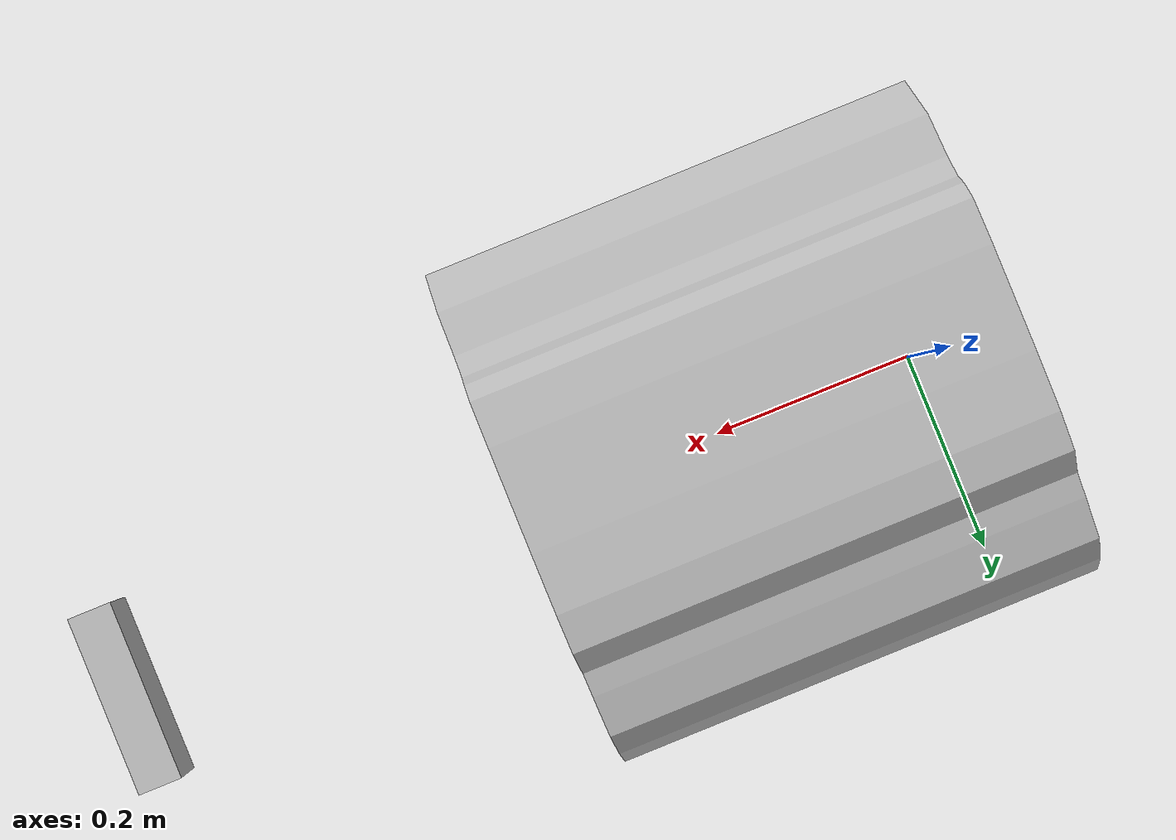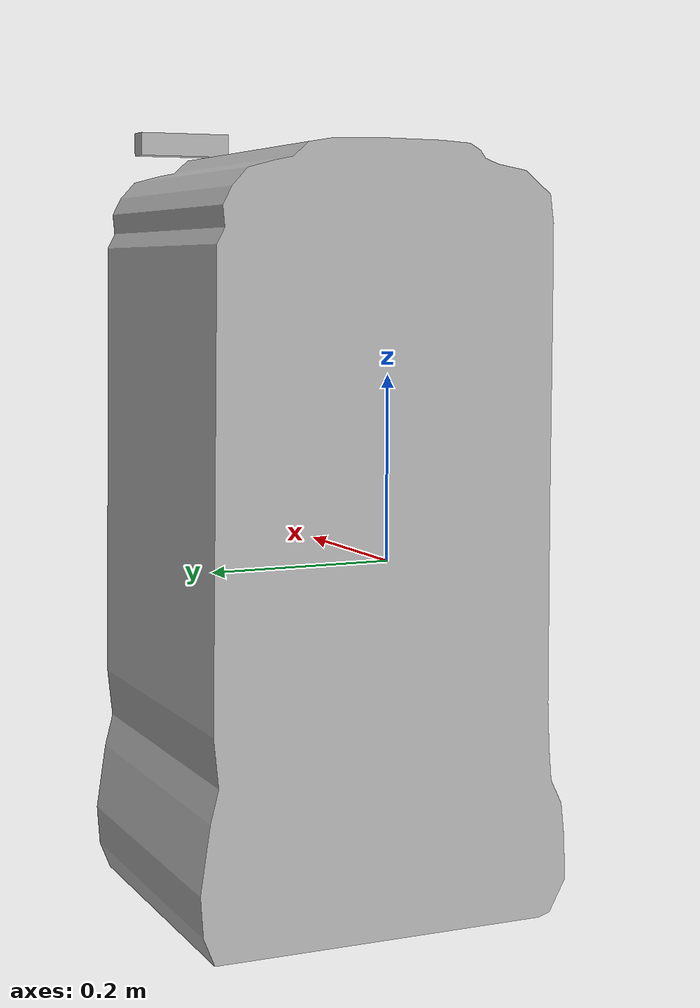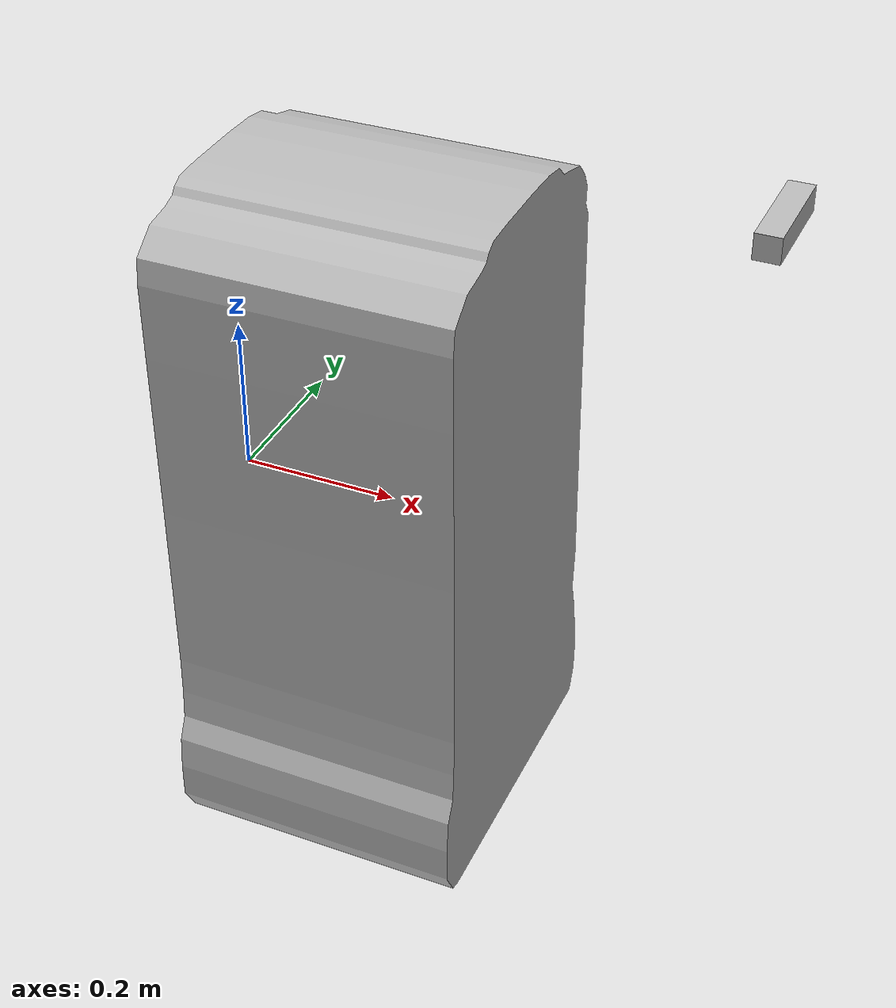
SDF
<?xml version="1.0" encoding="UTF-8"?>
<sdf version="1.5">
   <model name="flashbot">
      <pose>0 0 0 0 0 0</pose>
      <!-- Main Chassis -->
      <link name="base_link">
         <collision name="collision">
            <pose>0.06 0 0.9 0 0 0</pose>
            <geometry>
               <box>
                  <size>1.2 0.7 1.8</size>
               </box>
            </geometry>
         </collision>
         <inertial>
            <mass>33.855</mass>
            <pose>-0.0856132 -0.000839955 0.238145 0 0 0</pose>
            <inertia>
               <ixx>2.2343</ixx>
               <ixy>-0.023642</ixy>
               <ixz>0.275174</ixz>
               <iyy>3.42518</iyy>
               <iyz>0.00239624</iyz>
               <izz>2.1241</izz>
            </inertia>
         </inertial>
         <!-- Visual -->
         <!-- Base frame -->
         <visual name="base">
            <pose>0 0 0 0 0 0</pose>
            <geometry>
               <mesh>
                  <uri>model://flashbot/meshes/flashbot.dae</uri>
               </mesh>
            </geometry>
         </visual>
      </link>
      <link name="test_link">
         <visual name="test_visual">
            <pose>0.65 0 0.48 0 0 0</pose>
            <geometry>
               <box>
                  <size>0.030 0.124 0.030</size>
               </box>
            </geometry>
         </visual>
         <collision name="test_visual">
            <pose>0.65 0 0.48 0 0 0</pose>
            <geometry>
               <box>
                  <size>0.030 0.124 0.030</size>
               </box>
            </geometry>
         </collision>
         <inertial>
            <pose>0.65 0 0.48 0 0 0</pose>
            <mass>0.135</mass>
            <inertia>
               <ixx>0.00018310499999999998</ixx>
               <ixy>0.0</ixy>
               <ixz>0.0</ixz>
               <iyy>2.0249999999999998e-05</iyy>
               <iyz>0.0</iyz>
               <izz>0.00018310499999999998</izz>
            </inertia>
         </inertial>
      </link>
      <joint name="test_joint" type="fixed">
         <parent>base_link</parent>
         <child>test_link</child>
      </joint>
   </model>
</sdf>
